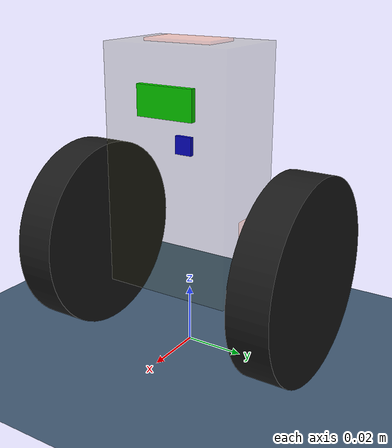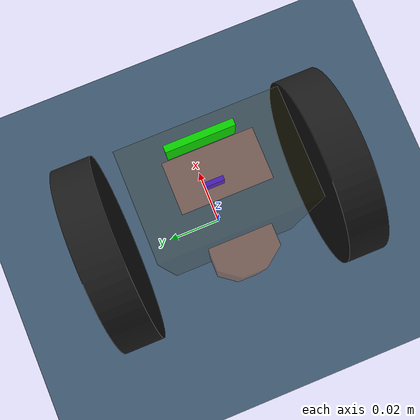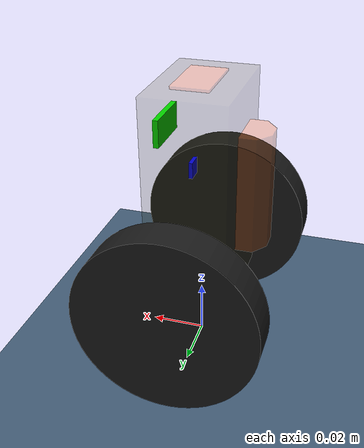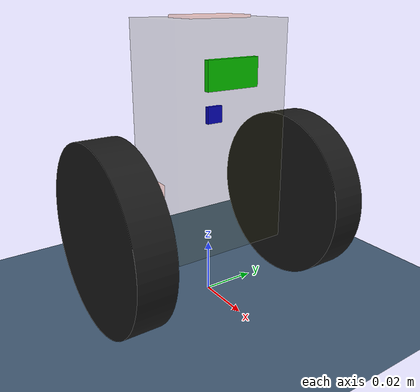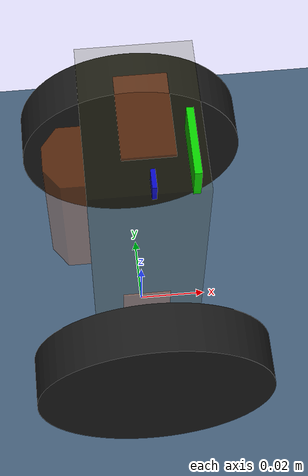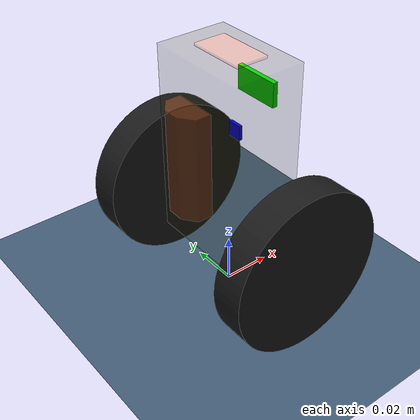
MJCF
<?xml version="1.0" encoding="UTF-8"?>

<!-- MJCF -->
<!-- MuJoCo Format: XML for describing physical components of the robot and how
     they fit together. Reference:
     https://mujoco.readthedocs.io/en/stable/XMLreference.html -->

<mujoco model="bala-c-plus-simplified">

  <!-- Settings -->

  <compiler angle="radian"
            coordinate="local"
            meshdir="meshes"
            autolimits="true"/>

  <option timestep="0.005"
          gravity="0 0 -9.81"
          integrator="implicitfast"/>

  <!-- Defaults -->

  <!-- Specifies default values for various attributes -->
  <default>
    <geom contype="1"
          conaffinity="1"
          friction="0.8 0.005 0.0001"/>

    <!-- Visual-only geometry: never collides. Meshes are demoted to this
         because MuJoCo convexifies them. -->
    <default class="visual">
      <geom contype="0" conaffinity="0" group="2"/>
    </default>

      <!-- Collision-only geometry: primitives, hidden by default. -->
    <default class="collision">
      <geom group="3" rgba="1 0 0 0.3"/>
    </default>

    <default class="motor">
      <general gaintype="fixed"  gainprm="0.157"
               biastype="affine" biasprm="0 0 -0.0135"
               ctrlrange="-1 1"/>
    </default>

    <default class="wheel">
      <joint type="hinge"
             axis="0 1 0"
             damping="0"
             frictionloss="0.0171"
             armature="4.6e-4"/>
    </default>
  </default>

  <!-- Assets: meshes and visual textures -->

  <!-- Define assets to use when building the world -->
  <asset>
    <!-- Define mesh, file location, and scale (convert to meters) -->
    <mesh name="chassis_mesh"
          file="chassis.stl"
          scale="0.001 0.001 0.001"/>
    <mesh name="wheel_left_mesh"
          file="wheel_left.stl"
          scale="0.001 0.001 0.001"/>
    <mesh name="wheel_right_mesh"
          file="wheel_right.stl"
          scale="0.001 0.001 0.001"/>

    <!-- Use simple gradient for sky texture -->
    <texture type="skybox"
             builtin="gradient"
             rgb1="0.5 0.7 1"
             rgb2="0.95 0.95 1"
             width="256"
             height="256"/>

    <!-- Use built-in checker pattern to create grid texture -->
    <texture name="grid"
             type="2d"
             builtin="checker"
             rgb1="0.2 0.3 0.4"
             rgb2="0.3 0.4 0.5"
             width="512"
             height="512"
             mark="cross"
             markrgb="0.8 0.8 0.8"/>

    <!-- Create a grid material from the grid texture  -->
    <material name="grid"
              texture="grid"
              texrepeat="5 5"
              reflectance="0"
              specular="0"
              shininess="0"/>
  </asset>

  <!-- World and robot bodies -->

  <!-- The world and everything in it -->
  <worldbody>

    <!-- Lighting -->
    <light pos="0 0 1.5"
           dir="0 0 -1"
           diffuse="0.8 0.8 0.8"/>

    <!-- Ground plane at z=0, grid texture. If size x or y is set to 0, the
         plane is infinitely wide/long with 0 size. We'll make it large but
         finite. -->
    <geom name="ground"
          type="plane"
          size="5 5 0.1"
          material="grid"/>

    <body name="chassis" pos="0 0 0.03325">

      <!-- Free joint: robot can translate/orient freely in world frame -->
      <freejoint name="root"/>

      <!-- Visual mesh - only for displaying in the simulator visualizer -->
      <geom name="chassis_vis"
            class="visual"
            type="mesh"
            mesh="chassis_mesh"
            rgba="0.988 0.431 0.110 0.3"/>

      <!-- Collision geometry - simple box, just for detecting collisions with
           the ground -->
      <geom name="chassis_col"
            class="collision"
            type="box"
            size="0.015 0.022 0.040"
            pos="0 0 0.030"
            group="0"
            rgba="0.2 0.2 0.0 0.2"/>

      <!-- Chassis inertial properties (copied from FreeCAD script output) -->
      <inertial pos="-0.006500 0.000000 0.029000"
                mass="0.062000"
                fullinertia="0.000031487 0.000031243 0.000009372 0.000000000 0.000000484 0.000000000"/>

      <site name="imu_site"
            type="box"
            pos="0.00335 0.0 0.0375"
            size="0.003 0.003 0.0007"
            quat="0.5 -0.5 0.5 -0.5"
            rgba="0 0 1.0 1.0"/>

      <!-- Visual marker to show the "front" of the robot -->
      <geom type="box"
            size="0.001 0.01 0.005"
            pos="0.0135 0 0.0529"
            rgba="0 1.0 0 1.0"
            contype="0"
            conaffinity="0"/>

      <!-- Left wheel -->
      <body name="wheel_left" pos="0 0.04 0">

        <!-- Use wheel default properties -->
        <joint name="left_wheel_joint" class="wheel"/>

        <!-- Visual mesh -->
        <geom name="wheel_left_vis"
              class="visual"
              type="mesh"
              mesh="wheel_left_mesh"
              rgba="0.1 0.1 0.1 1.0"/>

        <!-- Collision geometry: use a basic cylinder (orig: 0.03325) -->
        <geom name="wheel_left_col"
              class="collision"
              type="cylinder"
              size="0.03325 0.006"
              zaxis="0 1 0"/>

        <!-- Wheel inertial properties (copied from FreeCAD script output) -->
        <inertial pos="0.000000 0.000000 0.000000"
                  mass="0.018000"
                  diaginertia="0.000005257 0.000009950 0.000005257"/>
      </body>

      <!-- Right wheel -->
      <body name="wheel_right" pos="0 -0.04 0">

        <!-- Use wheel default properties -->
        <joint name="right_wheel_joint" class="wheel"/>

        <!-- Visual mesh -->
        <geom name="wheel_right_vis"
              class="visual"
              type="mesh"
              mesh="wheel_right_mesh"
              rgba="0.1 0.1 0.1 1.0"/>

        <!-- Collision geometry: use a basic cylinder -->
        <geom name="wheel_right_col"
              class="collision"
              type="cylinder"
              size="0.03325 0.006"
              zaxis="0 1 0"/>

        <!-- Wheel inertial properties (copied from FreeCAD script output) -->
        <inertial pos="0.000000 0.000000 0.000000"
                  mass="0.018000"
                  diaginertia="0.000005257 0.000009950 0.000005257"/>
      </body>
    </body>
  </worldbody>

  <!-- Actuators: motors driving the wheel joints -->

  <!-- Use defaults for motor/actuator attributes -->
  <actuator>
    <general name="left_motor"  class="motor" joint="left_wheel_joint"/>
    <general name="right_motor" class="motor" joint="right_wheel_joint"/>
  </actuator>

  <!-- Sensors: IMU and encoders -->

  <!-- Define all the sensors and their locations -->
  <sensor>
    <accelerometer name="imu_accel" site="imu_site"/>
    <gyro name="imu_gyro" site="imu_site"/>
    <framequat name="imu_orientation" objtype="site" objname="imu_site"/>

    <!-- Wheel encoders (joint position and velocity). This is privileged
         information as the real robot does not have encoders. -->
    <jointpos name="left_wheel_pos" joint="left_wheel_joint"/>
    <jointpos name="right_wheel_pos" joint="right_wheel_joint"/>
    <jointvel name="left_wheel_vel" joint="left_wheel_joint"/>
    <jointvel name="right_wheel_vel" joint="right_wheel_joint"/>
  </sensor>

</mujoco>
